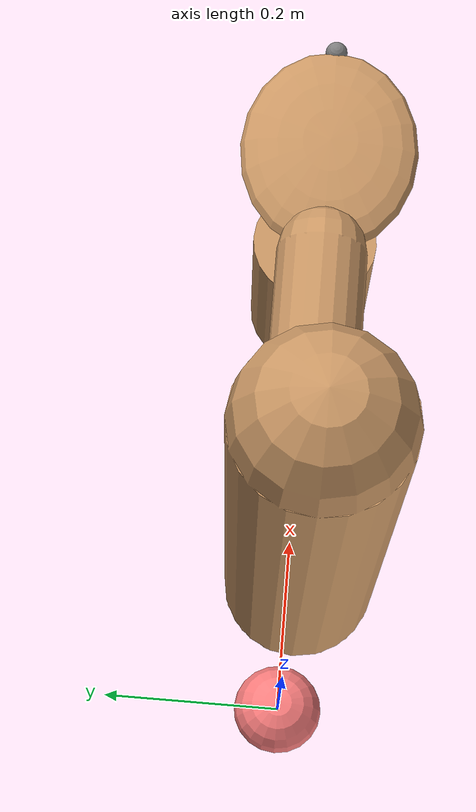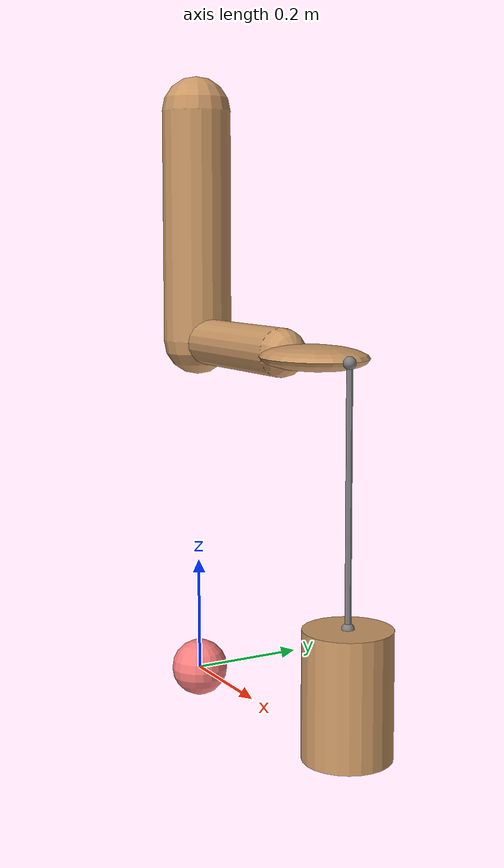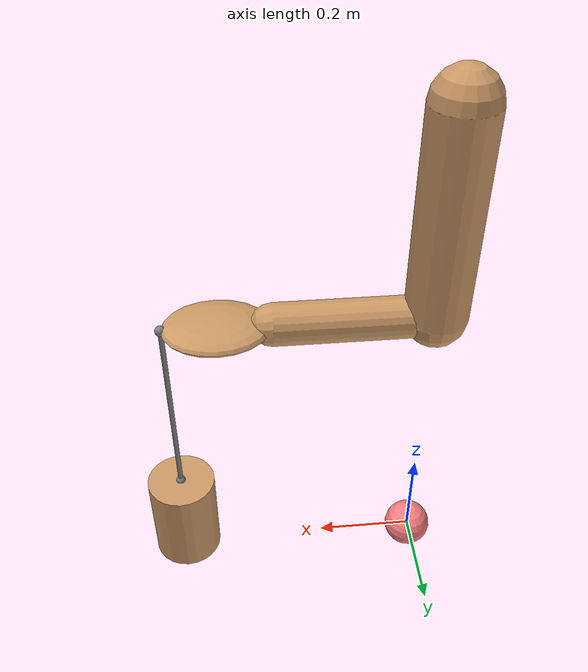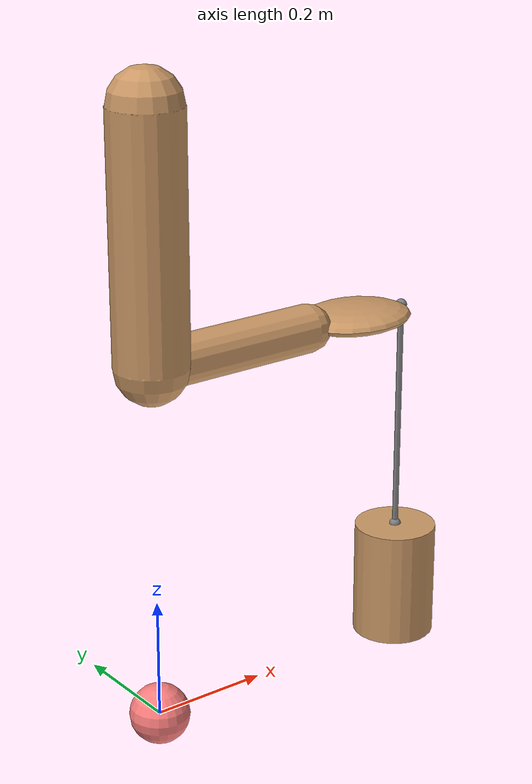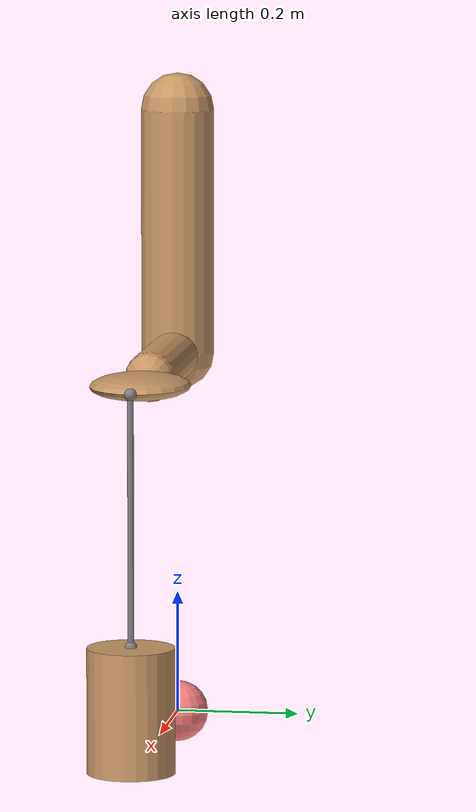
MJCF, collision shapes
<mujoco model="example">
  <compiler coordinate="global"/>

  <default>
    <geom rgba=".8 .6 .4 1"/>

    <default class="visual">
      <geom type="mesh" contype="0" conaffinity="0" group="2"/>
    </default>

  </default>

  <asset>
    <texture type="skybox" builtin="gradient" rgb1="1 1 1" rgb2=".6 .8 1" width="256" height="256"/>
    <mesh file="znofinger.obj"/>
    <mesh file="zsurmoule.obj"/>
  </asset>

  <worldbody>
    <light pos="0 1 1" dir="0 -1 -1" diffuse="1 1 1"/>
    <camera name="track" mode="trackcom" pos="0 -3 0.3" xyaxes="1 0 0 0 0 1"/>

    <body name = "target" pos="0 0 0">
        <geom type="sphere" size="0.05" rgba="5 0.5 0.5 1"/>
    </body>

    <body>
      <geom type="capsule" fromto="0 0 1  0 0 0.6" size="0.06"/>
      <geom mesh="znofinger" class="visual"/>
      <joint type="ball" pos="0 0 1"/>
      <body>
        <geom type="capsule" fromto="0 0 0.6  0.3 0 0.6" size="0.04"/>
        <joint type="hinge" pos="0 0 0.6" axis="0 1 0"/>
        <joint type="hinge" pos="0 0 0.6" axis="1 0 0"/>
        <body>
          <geom type="ellipsoid" pos="0.4 0 0.6" size="0.1 0.08 0.02"/>
          <site name="end1" pos="0.5 0 0.6" type="sphere" size="0.01"/>
          <joint type="hinge" pos="0.3 0 0.6" axis="0 1 0"/>
          <joint type="hinge" pos="0.3 0 0.6" axis="0 0 1"/>
        </body>
      </body>
    </body>
    <body>
      <geom type="cylinder" fromto="0.5 0 0.2  0.5 0 0" size="0.07"/>
      <site name="end2" pos="0.5 0 0.2" type="sphere" size="0.01"/>
      <joint type="free"/>
    </body>
  </worldbody>

  <tendon>
    <spatial limited="true" range="0 0.6" width="0.005">
      <site site="end1"/>
      <site site="end2"/>
    </spatial>
  </tendon>
</mujoco>
